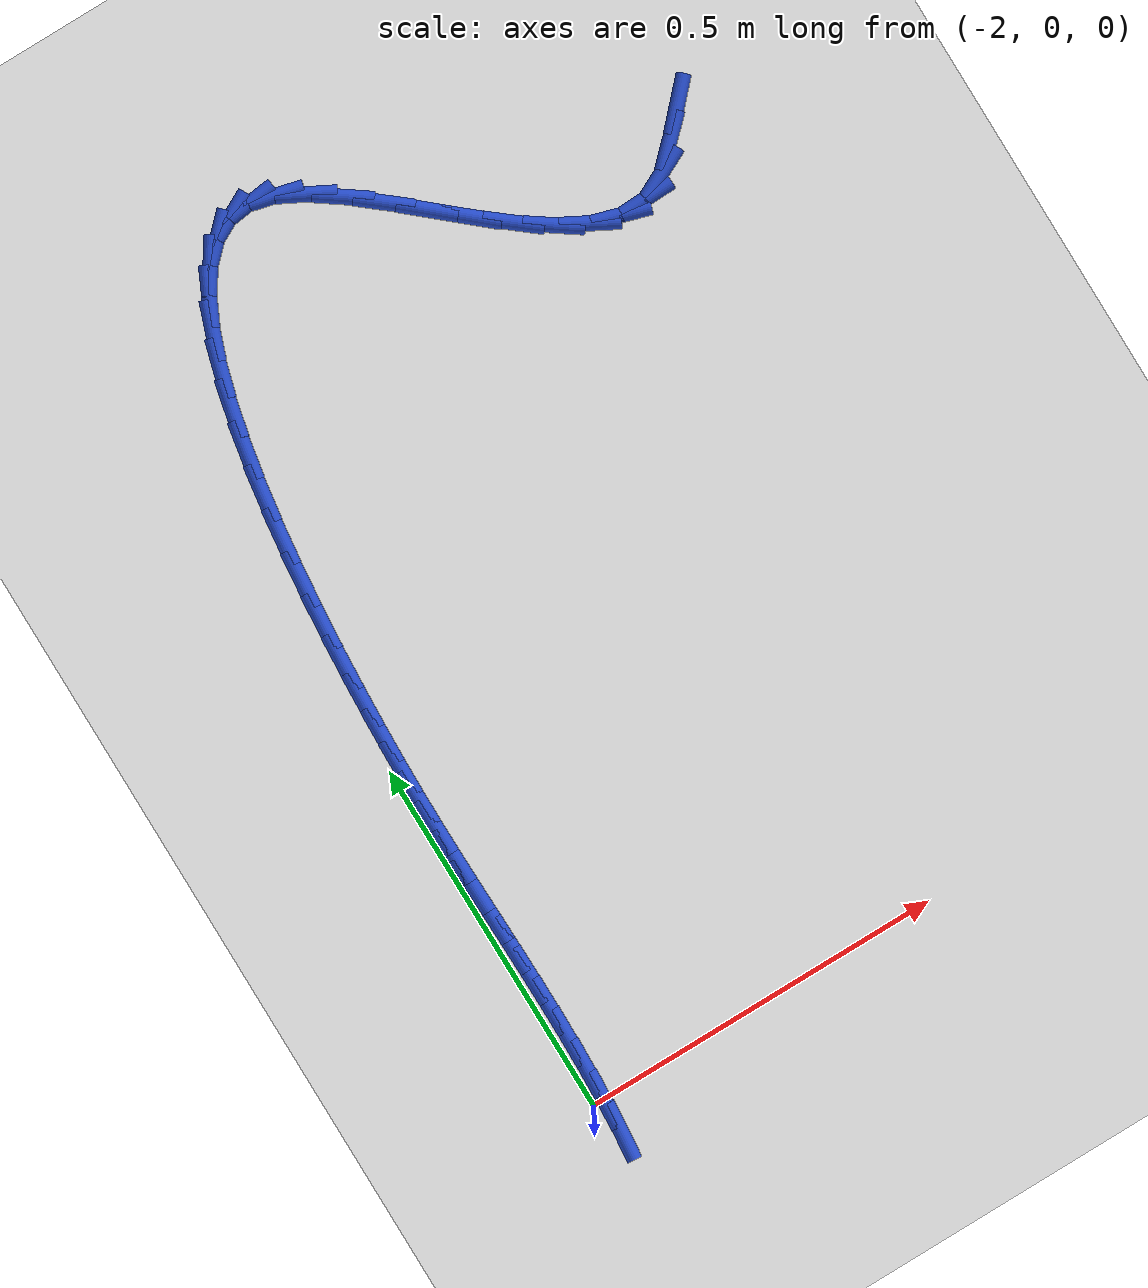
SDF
<sdf version="1.6">
 <world name="default">
  <model name="ground_plane">
   <static>1</static>
   <link name="link">
    <collision name="collision">
     <geometry><plane><normal>0 0 1</normal><size>100 100</size></plane></geometry>
     <surface><friction><ode><mu>100</mu><mu2>50</mu2></ode></friction></surface>
    </collision>
    <visual name="visual">
     <cast_shadows>0</cast_shadows>
     <geometry><plane><normal>0 0 1</normal><size>100 100</size></plane></geometry>
     <material>
      <script><uri>file://media/materials/scripts/gazebo.material</uri><name>Gazebo/WhiteGlow</name></script>
     </material>
    </visual>
   </link>
  </model>
  <model name="line">
   <link name="link_40">
    <pose>-1.2433641772313597 1.0332192153658406 0.01 0 1.57 0.8137842402079073</pose>
    <collision name="collision">
     <geometry><cylinder><radius>0.01</radius><length>0.08</length></cylinder></geometry>
    </collision>
    <visual name="visual">
     <material>
      <script><name>Gazebo/Blue</name><uri>file://media/materials/scripts/gazebo.material</uri></script>
     </material>
     <geometry><cylinder><radius>0.01</radius><length>0.08</length></cylinder></geometry>
    </visual>
   </link>
   <link name="link_41">
    <pose>-1.2757633985514543 0.9989263589665922 0.01 0 1.57 0.7705133797748409</pose>
    <collision name="collision">
     <geometry><cylinder><radius>0.01</radius><length>0.08</length></cylinder></geometry>
    </collision>
    <visual name="visual">
     <material>
      <script><name>Gazebo/Blue</name><uri>file://media/materials/scripts/gazebo.material</uri></script>
     </material>
     <geometry><cylinder><radius>0.01</radius><length>0.08</length></cylinder></geometry>
    </visual>
   </link>
   <link name="link_42">
    <pose>-1.3073121697854584 0.9683030736913412 0.01 0 1.57 0.46118947887092043</pose>
    <collision name="collision">
     <geometry><cylinder><radius>0.01</radius><length>0.08</length></cylinder></geometry>
    </collision>
    <visual name="visual">
     <material>
      <script><name>Gazebo/Blue</name><uri>file://media/materials/scripts/gazebo.material</uri></script>
     </material>
     <geometry><cylinder><radius>0.01</radius><length>0.08</length></cylinder></geometry>
    </visual>
   </link>
   <link name="link_43">
    <pose>-1.3411124056794164 0.9515066851858648 0.01 0 1.57 0.03333369516429722</pose>
    <collision name="collision">
     <geometry><cylinder><radius>0.01</radius><length>0.08</length></cylinder></geometry>
    </collision>
    <visual name="visual">
     <material>
      <script><name>Gazebo/Blue</name><uri>file://media/materials/scripts/gazebo.material</uri></script>
     </material>
     <geometry><cylinder><radius>0.01</radius><length>0.08</length></cylinder></geometry>
    </visual>
   </link>
   <link name="link_44">
    <pose>-1.3778416122851653 0.9502819113458469 0.01 0 1.57 -0.291311463790889</pose>
    <collision name="collision">
     <geometry><cylinder><radius>0.01</radius><length>0.08</length></cylinder></geometry>
    </collision>
    <visual name="visual">
     <material>
      <script><name>Gazebo/Blue</name><uri>file://media/materials/scripts/gazebo.material</uri></script>
     </material>
     <geometry><cylinder><radius>0.01</radius><length>0.08</length></cylinder></geometry>
    </visual>
   </link>
   <link name="link_45">
    <pose>-1.4169163838821284 0.9619981532426475 0.01 0 1.57 -0.49405290184933237</pose>
    <collision name="collision">
     <geometry><cylinder><radius>0.01</radius><length>0.08</length></cylinder></geometry>
    </collision>
    <visual name="visual">
     <material>
      <script><name>Gazebo/Blue</name><uri>file://media/materials/scripts/gazebo.material</uri></script>
     </material>
     <geometry><cylinder><radius>0.01</radius><length>0.08</length></cylinder></geometry>
    </visual>
   </link>
   <link name="link_46">
    <pose>-1.4577425120795617 0.983987327085045 0.01 0 1.57 -0.6140071566286842</pose>
    <collision name="collision">
     <geometry><cylinder><radius>0.01</radius><length>0.08</length></cylinder></geometry>
    </collision>
    <visual name="visual">
     <material>
      <script><name>Gazebo/Blue</name><uri>file://media/materials/scripts/gazebo.material</uri></script>
     </material>
     <geometry><cylinder><radius>0.01</radius><length>0.08</length></cylinder></geometry>
    </visual>
   </link>
   <link name="link_47">
    <pose>-1.4997257884867254 1.0135813490818188 0.01 0 1.57 -0.6817781273284622</pose>
    <collision name="collision">
     <geometry><cylinder><radius>0.01</radius><length>0.08</length></cylinder></geometry>
    </collision>
    <visual name="visual">
     <material>
      <script><name>Gazebo/Blue</name><uri>file://media/materials/scripts/gazebo.material</uri></script>
     </material>
     <geometry><cylinder><radius>0.01</radius><length>0.08</length></cylinder></geometry>
    </visual>
   </link>
   <link name="link_48">
    <pose>-1.5422720047128755 1.0481121354417469 0.01 0 1.57 -0.7134614498351695</pose>
    <collision name="collision">
     <geometry><cylinder><radius>0.01</radius><length>0.08</length></cylinder></geometry>
    </collision>
    <visual name="visual">
     <material>
      <script><name>Gazebo/Blue</name><uri>file://media/materials/scripts/gazebo.material</uri></script>
     </material>
     <geometry><cylinder><radius>0.01</radius><length>0.08</length></cylinder></geometry>
    </visual>
   </link>
   <link name="link_49">
    <pose>-1.5847869523672717 1.0849116023736094 0.01 0 1.57 -0.7153959912994973</pose>
    <collision name="collision">
     <geometry><cylinder><radius>0.01</radius><length>0.08</length></cylinder></geometry>
    </collision>
    <visual name="visual">
     <material>
      <script><name>Gazebo/Blue</name><uri>file://media/materials/scripts/gazebo.material</uri></script>
     </material>
     <geometry><cylinder><radius>0.01</radius><length>0.08</length></cylinder></geometry>
    </visual>
   </link>
   <link name="link_50">
    <pose>-1.6266764230591717 1.1213116660861844 0.01 0 1.57 -0.6865728458803131</pose>
    <collision name="collision">
     <geometry><cylinder><radius>0.01</radius><length>0.08</length></cylinder></geometry>
    </collision>
    <visual name="visual">
     <material>
      <script><name>Gazebo/Blue</name><uri>file://media/materials/scripts/gazebo.material</uri></script>
     </material>
     <geometry><cylinder><radius>0.01</radius><length>0.08</length></cylinder></geometry>
    </visual>
   </link>
   <link name="link_51">
    <pose>-1.6673462083978334 1.1546442427882504 0.01 0 1.57 -0.6175653939823988</pose>
    <collision name="collision">
     <geometry><cylinder><radius>0.01</radius><length>0.08</length></cylinder></geometry>
    </collision>
    <visual name="visual">
     <material>
      <script><name>Gazebo/Blue</name><uri>file://media/materials/scripts/gazebo.material</uri></script>
     </material>
     <geometry><cylinder><radius>0.01</radius><length>0.08</length></cylinder></geometry>
    </visual>
   </link>
   <link name="link_52">
    <pose>-1.7062020999925156 1.1822412486885876 0.01 0 1.57 -0.48469928933581025</pose>
    <collision name="collision">
     <geometry><cylinder><radius>0.01</radius><length>0.08</length></cylinder></geometry>
    </collision>
    <visual name="visual">
     <material>
      <script><name>Gazebo/Blue</name><uri>file://media/materials/scripts/gazebo.material</uri></script>
     </material>
     <geometry><cylinder><radius>0.01</radius><length>0.08</length></cylinder></geometry>
    </visual>
   </link>
   <link name="link_53">
    <pose>-1.7426498894524758 1.2014345999959737 0.01 0 1.57 -0.24039862072239954</pose>
    <collision name="collision">
     <geometry><cylinder><radius>0.01</radius><length>0.08</length></cylinder></geometry>
    </collision>
    <visual name="visual">
     <material>
      <script><name>Gazebo/Blue</name><uri>file://media/materials/scripts/gazebo.material</uri></script>
     </material>
     <geometry><cylinder><radius>0.01</radius><length>0.08</length></cylinder></geometry>
    </visual>
   </link>
   <link name="link_54">
    <pose>-1.7761115640180518 1.2096373693537716 0.01 0 1.57 0.11667656935123075</pose>
    <collision name="collision">
     <geometry><cylinder><radius>0.01</radius><length>0.08</length></cylinder></geometry>
    </collision>
    <visual name="visual">
     <material>
      <script><name>Gazebo/Blue</name><uri>file://media/materials/scripts/gazebo.material</uri></script>
     </material>
     <geometry><cylinder><radius>0.01</radius><length>0.08</length></cylinder></geometry>
    </visual>
   </link>
   <link name="link_55">
    <pose>-1.8063738538254013 1.206090358921826 0.01 0 1.57 0.48241739537349754</pose>
    <collision name="collision">
     <geometry><cylinder><radius>0.01</radius><length>0.08</length></cylinder></geometry>
    </collision>
    <visual name="visual">
     <material>
      <script><name>Gazebo/Blue</name><uri>file://media/materials/scripts/gazebo.material</uri></script>
     </material>
     <geometry><cylinder><radius>0.01</radius><length>0.08</length></cylinder></geometry>
    </visual>
   </link>
   <link name="link_56">
    <pose>-1.8335839740180322 1.1918407640639377 0.01 0 1.57 0.7751715401620098</pose>
    <collision name="collision">
     <geometry><cylinder><radius>0.01</radius><length>0.08</length></cylinder></geometry>
    </collision>
    <visual name="visual">
     <material>
      <script><name>Gazebo/Blue</name><uri>file://media/materials/scripts/gazebo.material</uri></script>
     </material>
     <geometry><cylinder><radius>0.01</radius><length>0.08</length></cylinder></geometry>
    </visual>
   </link>
   <link name="link_57">
    <pose>-1.8579044837560361 1.1680126691315373 0.01 0 1.57 0.9812558598755927</pose>
    <collision name="collision">
     <geometry><cylinder><radius>0.01</radius><length>0.08</length></cylinder></geometry>
    </collision>
    <visual name="visual">
     <material>
      <script><name>Gazebo/Blue</name><uri>file://media/materials/scripts/gazebo.material</uri></script>
     </material>
     <geometry><cylinder><radius>0.01</radius><length>0.08</length></cylinder></geometry>
    </visual>
   </link>
   <link name="link_58">
    <pose>-1.879497942199505 1.1357301584760566 0.01 0 1.57 1.1229726978186385</pose>
    <collision name="collision">
     <geometry><cylinder><radius>0.01</radius><length>0.08</length></cylinder></geometry>
    </collision>
    <visual name="visual">
     <material>
      <script><name>Gazebo/Blue</name><uri>file://media/materials/scripts/gazebo.material</uri></script>
     </material>
     <geometry><cylinder><radius>0.01</radius><length>0.08</length></cylinder></geometry>
    </visual>
   </link>
   <link name="link_59">
    <pose>-1.8985269085085288 1.0961173164489282 0.01 0 1.57 1.2226896131673166</pose>
    <collision name="collision">
     <geometry><cylinder><radius>0.01</radius><length>0.08</length></cylinder></geometry>
    </collision>
    <visual name="visual">
     <material>
      <script><name>Gazebo/Blue</name><uri>file://media/materials/scripts/gazebo.material</uri></script>
     </material>
     <geometry><cylinder><radius>0.01</radius><length>0.08</length></cylinder></geometry>
    </visual>
   </link>
   <link name="link_60">
    <pose>-1.9151539418431982 1.0502982274015817 0.01 0 1.57 1.2953243200893407</pose>
    <collision name="collision">
     <geometry><cylinder><radius>0.01</radius><length>0.08</length></cylinder></geometry>
    </collision>
    <visual name="visual">
     <material>
      <script><name>Gazebo/Blue</name><uri>file://media/materials/scripts/gazebo.material</uri></script>
     </material>
     <geometry><cylinder><radius>0.01</radius><length>0.08</length></cylinder></geometry>
    </visual>
   </link>
   <link name="link_61">
    <pose>-1.9295416013636042 0.9993969756854494 0.01 0 1.57 1.3500459101198456</pose>
    <collision name="collision">
     <geometry><cylinder><radius>0.01</radius><length>0.08</length></cylinder></geometry>
    </collision>
    <visual name="visual">
     <material>
      <script><name>Gazebo/Blue</name><uri>file://media/materials/scripts/gazebo.material</uri></script>
     </material>
     <geometry><cylinder><radius>0.01</radius><length>0.08</length></cylinder></geometry>
    </visual>
   </link>
   <link name="link_62">
    <pose>-1.941852446229838 0.9445376456519631 0.01 0 1.57 1.392505434908142</pose>
    <collision name="collision">
     <geometry><cylinder><radius>0.01</radius><length>0.08</length></cylinder></geometry>
    </collision>
    <visual name="visual">
     <material>
      <script><name>Gazebo/Blue</name><uri>file://media/materials/scripts/gazebo.material</uri></script>
     </material>
     <geometry><cylinder><radius>0.01</radius><length>0.08</length></cylinder></geometry>
    </visual>
   </link>
   <link name="link_63">
    <pose>-1.9522490356019897 0.8868443216525531 0.01 0 1.57 1.4262818396620163</pose>
    <collision name="collision">
     <geometry><cylinder><radius>0.01</radius><length>0.08</length></cylinder></geometry>
    </collision>
    <visual name="visual">
     <material>
      <script><name>Gazebo/Blue</name><uri>file://media/materials/scripts/gazebo.material</uri></script>
     </material>
     <geometry><cylinder><radius>0.01</radius><length>0.08</length></cylinder></geometry>
    </visual>
   </link>
   <link name="link_64">
    <pose>-1.9608939286401508 0.8274410880386525 0.01 0 1.57 1.4537168571236707</pose>
    <collision name="collision">
     <geometry><cylinder><radius>0.01</radius><length>0.08</length></cylinder></geometry>
    </collision>
    <visual name="visual">
     <material>
      <script><name>Gazebo/Blue</name><uri>file://media/materials/scripts/gazebo.material</uri></script>
     </material>
     <geometry><cylinder><radius>0.01</radius><length>0.08</length></cylinder></geometry>
    </visual>
   </link>
   <link name="link_65">
    <pose>-1.9679496845044115 0.7674520291616914 0.01 0 1.57 1.4763914577113066</pose>
    <collision name="collision">
     <geometry><cylinder><radius>0.01</radius><length>0.08</length></cylinder></geometry>
    </collision>
    <visual name="visual">
     <material>
      <script><name>Gazebo/Blue</name><uri>file://media/materials/scripts/gazebo.material</uri></script>
     </material>
     <geometry><cylinder><radius>0.01</radius><length>0.08</length></cylinder></geometry>
    </visual>
   </link>
   <link name="link_66">
    <pose>-1.9735788623548638 0.7080012293731015 0.01 0 1.57 1.4954026355419876</pose>
    <collision name="collision">
     <geometry><cylinder><radius>0.01</radius><length>0.08</length></cylinder></geometry>
    </collision>
    <visual name="visual">
     <material>
      <script><name>Gazebo/Blue</name><uri>file://media/materials/scripts/gazebo.material</uri></script>
     </material>
     <geometry><cylinder><radius>0.01</radius><length>0.08</length></cylinder></geometry>
    </visual>
   </link>
   <link name="link_67">
    <pose>-1.9779440213515977 0.6502127730243149 0.01 0 1.57 1.511528023546924</pose>
    <collision name="collision">
     <geometry><cylinder><radius>0.01</radius><length>0.08</length></cylinder></geometry>
    </collision>
    <visual name="visual">
     <material>
      <script><name>Gazebo/Blue</name><uri>file://media/materials/scripts/gazebo.material</uri></script>
     </material>
     <geometry><cylinder><radius>0.01</radius><length>0.08</length></cylinder></geometry>
    </visual>
   </link>
   <link name="link_68">
    <pose>-1.9812077206547034 0.5952107444667618 0.01 0 1.57 1.52533315946196</pose>
    <collision name="collision">
     <geometry><cylinder><radius>0.01</radius><length>0.08</length></cylinder></geometry>
    </collision>
    <visual name="visual">
     <material>
      <script><name>Gazebo/Blue</name><uri>file://media/materials/scripts/gazebo.material</uri></script>
     </material>
     <geometry><cylinder><radius>0.01</radius><length>0.08</length></cylinder></geometry>
    </visual>
   </link>
   <link name="link_69">
    <pose>-1.9835323600882102 0.5441136091307579 0.01 0 1.57 1.5383307009896863</pose>
    <collision name="collision">
     <geometry><cylinder><radius>0.01</radius><length>0.08</length></cylinder></geometry>
    </collision>
    <visual name="visual">
     <material>
      <script><name>Gazebo/Blue</name><uri>file://media/materials/scripts/gazebo.material</uri></script>
     </material>
     <geometry><cylinder><radius>0.01</radius><length>0.08</length></cylinder></geometry>
    </visual>
   </link>
   <link name="link_70">
    <pose>-1.98505626830212 0.4971909723361431 0.01 0 1.57 1.5524401585663947</pose>
    <collision name="collision">
     <geometry><cylinder><radius>0.01</radius><length>0.08</length></cylinder></geometry>
    </collision>
    <visual name="visual">
     <material>
      <script><name>Gazebo/Blue</name><uri>file://media/materials/scripts/gazebo.material</uri></script>
     </material>
     <geometry><cylinder><radius>0.01</radius><length>0.08</length></cylinder></geometry>
    </visual>
   </link>
   <link name="link_71">
    <pose>-1.985868195712857 0.4529640832655804 0.01 0 1.57 1.5665723301544963</pose>
    <collision name="collision">
     <geometry><cylinder><radius>0.01</radius><length>0.08</length></cylinder></geometry>
    </collision>
    <visual name="visual">
     <material>
      <script><name>Gazebo/Blue</name><uri>file://media/materials/scripts/gazebo.material</uri></script>
     </material>
     <geometry><cylinder><radius>0.01</radius><length>0.08</length></cylinder></geometry>
    </visual>
   </link>
   <link name="link_72">
    <pose>-1.9860507808502084 0.40973865791838826 0.01 0 1.57 -1.5627748037044478</pose>
    <collision name="collision">
     <geometry><cylinder><radius>0.01</radius><length>0.08</length></cylinder></geometry>
    </collision>
    <visual name="visual">
     <material>
      <script><name>Gazebo/Blue</name><uri>file://media/materials/scripts/gazebo.material</uri></script>
     </material>
     <geometry><cylinder><radius>0.01</radius><length>0.08</length></cylinder></geometry>
    </visual>
   </link>
   <link name="link_73">
    <pose>-1.9857005269431511 0.3660753298031794 0.01 0 1.57 -1.5545271447936573</pose>
    <collision name="collision">
     <geometry><cylinder><radius>0.01</radius><length>0.08</length></cylinder></geometry>
    </collision>
    <visual name="visual">
     <material>
      <script><name>Gazebo/Blue</name><uri>file://media/materials/scripts/gazebo.material</uri></script>
     </material>
     <geometry><cylinder><radius>0.01</radius><length>0.08</length></cylinder></geometry>
    </visual>
   </link>
   <link name="link_74">
    <pose>-1.9849790242854184 0.32173142859973036 0.01 0 1.57 -1.5504929319947247</pose>
    <collision name="collision">
     <geometry><cylinder><radius>0.01</radius><length>0.08</length></cylinder></geometry>
    </collision>
    <visual name="visual">
     <material>
      <script><name>Gazebo/Blue</name><uri>file://media/materials/scripts/gazebo.material</uri></script>
     </material>
     <geometry><cylinder><radius>0.01</radius><length>0.08</length></cylinder></geometry>
    </visual>
   </link>
   <link name="link_75">
    <pose>-1.98406694578245 0.2768151384694836 0.01 0 1.57 -1.5504824656424379</pose>
    <collision name="collision">
     <geometry><cylinder><radius>0.01</radius><length>0.08</length></cylinder></geometry>
    </collision>
    <visual name="visual">
     <material>
      <script><name>Gazebo/Blue</name><uri>file://media/materials/scripts/gazebo.material</uri></script>
     </material>
     <geometry><cylinder><radius>0.01</radius><length>0.08</length></cylinder></geometry>
    </visual>
   </link>
   <link name="link_76">
    <pose>-1.9831449668102377 0.2314346889976178 0.01 0 1.57 -1.5543731525404296</pose>
    <collision name="collision">
     <geometry><cylinder><radius>0.01</radius><length>0.08</length></cylinder></geometry>
    </collision>
    <visual name="visual">
     <material>
      <script><name>Gazebo/Blue</name><uri>file://media/materials/scripts/gazebo.material</uri></script>
     </material>
     <geometry><cylinder><radius>0.01</radius><length>0.08</length></cylinder></geometry>
    </visual>
   </link>
   <link name="link_77">
    <pose>-1.9823937627447714 0.1856983097693115 0.01 0 1.57 -1.5621032374012283</pose>
    <collision name="collision">
     <geometry><cylinder><radius>0.01</radius><length>0.08</length></cylinder></geometry>
    </collision>
    <visual name="visual">
     <material>
      <script><name>Gazebo/Blue</name><uri>file://media/materials/scripts/gazebo.material</uri></script>
     </material>
     <geometry><cylinder><radius>0.01</radius><length>0.08</length></cylinder></geometry>
    </visual>
   </link>
   <link name="link_78">
    <pose>-1.9819940089620431 0.13971423036974454 0.01 0 1.57 1.5679263934828798</pose>
    <collision name="collision">
     <geometry><cylinder><radius>0.01</radius><length>0.08</length></cylinder></geometry>
    </collision>
    <visual name="visual">
     <material>
      <script><name>Gazebo/Blue</name><uri>file://media/materials/scripts/gazebo.material</uri></script>
     </material>
     <geometry><cylinder><radius>0.01</radius><length>0.08</length></cylinder></geometry>
    </visual>
   </link>
   <link name="link_79">
    <pose>-1.9821263808380434 0.0935906803840951 0.01 0 1.57 1.5524866682680745</pose>
    <collision name="collision">
     <geometry><cylinder><radius>0.01</radius><length>0.08</length></cylinder></geometry>
    </collision>
    <visual name="visual">
     <material>
      <script><name>Gazebo/Blue</name><uri>file://media/materials/scripts/gazebo.material</uri></script>
     </material>
     <geometry><cylinder><radius>0.01</radius><length>0.08</length></cylinder></geometry>
    </visual>
   </link>
   <link name="link_80">
    <pose>-1.9829715537487633 0.04743588939754302 0.01 0 1.57 1.5330813146152251</pose>
    <collision name="collision">
     <geometry><cylinder><radius>0.01</radius><length>0.08</length></cylinder></geometry>
    </collision>
    <visual name="visual">
     <material>
      <script><name>Gazebo/Blue</name><uri>file://media/materials/scripts/gazebo.material</uri></script>
     </material>
     <geometry><cylinder><radius>0.01</radius><length>0.08</length></cylinder></geometry>
    </visual>
   </link>
   <link name="link_81">
    <pose>-1.9847102030701929 0.001358086995266905 0.01 0 1.57 1.509581930203739</pose>
    <collision name="collision">
     <geometry><cylinder><radius>0.01</radius><length>0.08</length></cylinder></geometry>
    </collision>
    <visual name="visual">
     <material>
      <script><name>Gazebo/Blue</name><uri>file://media/materials/scripts/gazebo.material</uri></script>
     </material>
     <geometry><cylinder><radius>0.01</radius><length>0.08</length></cylinder></geometry>
    </visual>
   </link>
   <link name="link_82">
    <pose>-1.987523004178324 -0.0445344972375547 0.01 0 1.57 1.48182774965864</pose>
    <collision name="collision">
     <geometry><cylinder><radius>0.01</radius><length>0.08</length></cylinder></geometry>
    </collision>
    <visual name="visual">
     <material>
      <script><name>Gazebo/Blue</name><uri>file://media/materials/scripts/gazebo.material</uri></script>
     </material>
     <geometry><cylinder><radius>0.01</radius><length>0.08</length></cylinder></geometry>
    </visual>
   </link>
  </model>
 </world>
</sdf>
